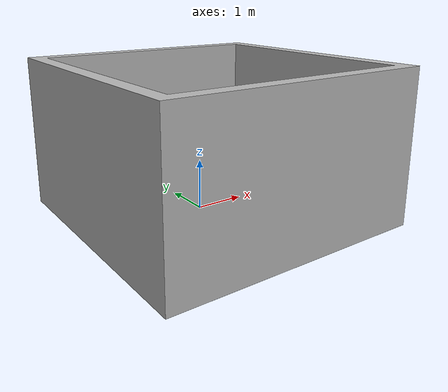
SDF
<?xml version="1.0"?>
<sdf version="1.4">
  <model name="room">
    <static>true</static>
    <link name="link">
      <collision name="collision_wall 1">
	<pose> 0.1 -2.7 1.5 0 0 0 </pose>
        <geometry>
          <box>
	    <size>5.25 0.5 3.05 </size>
	  </box>
        </geometry>
      </collision>
      <collision name = "collision_wall 2">
        <pose> 0.1 2 1.5 0 0 0</pose>
        <geometry>
	  <box>
	    <size>5.25 0.5 3.05 </size>
	  </box>
        </geometry>
      </collision>
      <collision name="collision_wall 3">
        <pose> -2.35 -0.4 1.5 0 0 0</pose>
	<geometry>
	  <box>
	    <size> 0.5 5.25 3.05 </size>
	  </box>
	</geometry>
      </collision>
      <collision name="collision_wall 4">
	<pose> 2.5 -0.4 1.5 0 0 0</pose>
	<geometry>
	  <box>
	    <size> 0.5 5.25 3.05 </size>
	  </box>
	</geometry>
      </collision>
      <collision name="collision_floor">
	<pose>0.08 -0.35 0.02 0 0 0</pose>
	<geometry>
	  <box>
	    <size>5.27 5.2 0.05</size>
	  </box>
	</geometry>
      </collision>
      <collision name="collision_ceiling">
	<pose>0.08 -0.35 3.0 0 0 0</pose>
	<geometry>
	  <box>
	    <size>5.27 5.2 0.06</size>
	  </box>
	</geometry>
      </collision>
      <visual name="visual">
        <geometry>
          <mesh>
            <uri>model://room/meshes/room.dae</uri>
          </mesh>
        </geometry>
      </visual>
    </link>
  </model>
</sdf>
